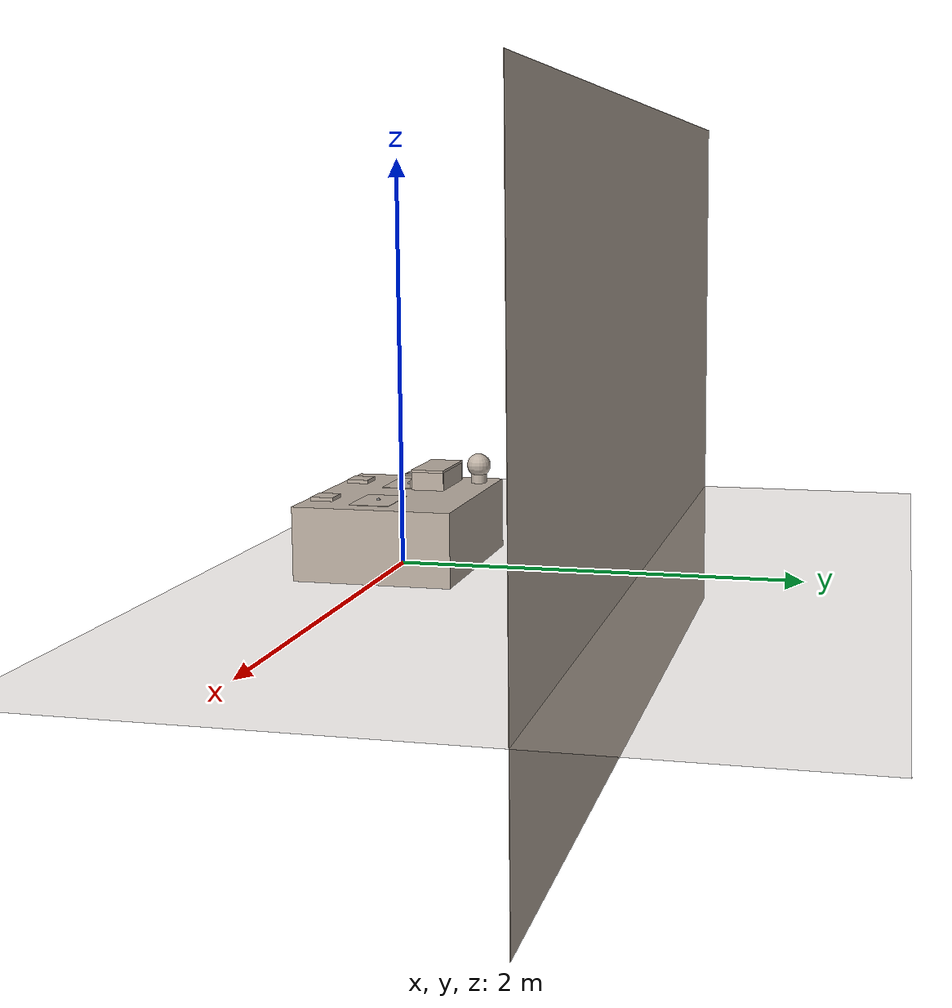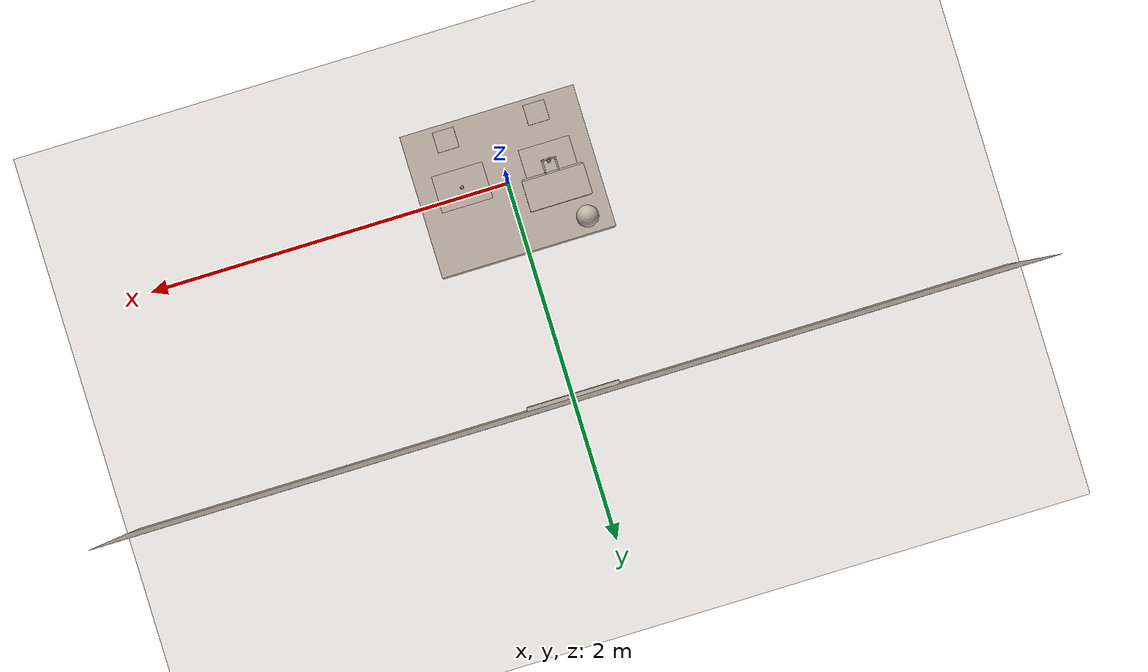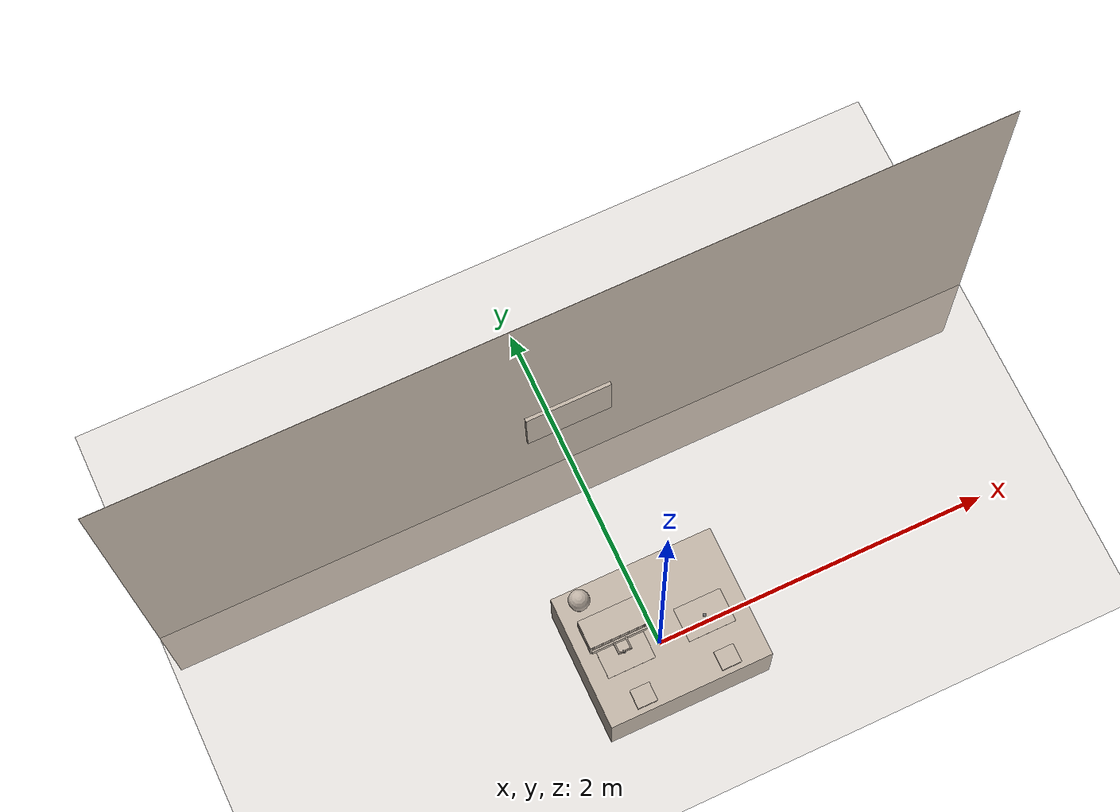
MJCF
<mujoco model="dinner_table">
  <compiler angle="radian" meshdir="../assets/meshes" texturedir="../assets/textures"/>
  <option timestep="0.002" integrator="implicitfast" iterations="50"/>

  <default>
    <geom solref="0.005 1" solimp="0.95 0.99 0.001"/>
    <default class="furniture">
      <geom friction="0.8 0.005 0.0001" rgba="0.75 0.7 0.65 1"/>
    </default>
    <!-- SO-101 arm default classes (so101/sts3215/...) are merged at build time -->
  </default>

  <asset>
    <!-- Textures and materials -->
    <texture name="table_tex" type="2d" file="table/table_01.png"/>
    <material name="table_mat" texture="table_tex" specular="0.2" shininess="0.1"/>

    <texture name="floor_tex" type="2d" file="floor/floor_01.png"/>
    <material name="floor_mat" texture="floor_tex" specular="0.1" shininess="0.1"/>

    <texture name="wall_tex" type="2d" file="wall/wall_01.png"/>
    <material name="wall_mat" texture="wall_tex" specular="0.05" shininess="0.05"/>

    <texture name="placemat_tex" type="2d" file="placemat/placemat_01.png"/>
    <material name="placemat_mat" texture="placemat_tex" specular="0.1" shininess="0.1"/>
    <!-- SO-101 arm meshes are merged at build time from assets/meshes/so101/official -->
  </asset>

  <worldbody>
    <include file="parts/lights.xml"/>
    <include file="parts/table.xml"/>
    <include file="parts/drawer_cabinet.xml"/>
    <include file="parts/placemats.xml"/>
    <include file="parts/decor.xml"/>
  </worldbody>
</mujoco>

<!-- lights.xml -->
<mujocoinclude>
  <!-- 4-light studio illumination rig -->
  <light name="key_light" pos="0.8 0.8 1.5" dir="-0.5 -0.5 -1.0" diffuse="0.5 0.5 0.5" specular="0.2 0.2 0.2"/>
  <light name="fill_light" pos="-0.8 0.6 1.2" dir="0.5 -0.4 -1.0" diffuse="0.35 0.35 0.35" specular="0.1 0.1 0.1"/>
  <light name="back_light" pos="0 1.2 0.8" dir="0 -0.8 -0.5" diffuse="0.25 0.25 0.25" specular="0.1 0.1 0.1"/>
  <light name="ambient" pos="0 0 2.0" dir="0 0 -1" diffuse="0.15 0.15 0.15" ambient="0.1 0.1 0.1"/>
</mujocoinclude>

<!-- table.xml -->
<mujocoinclude>
  <!-- Tabletop, legs, and arm mounting platforms -->
  <body name="table" pos="0 0 0">
    <geom name="table_top_col" type="box" size="0.48 0.39 0.18" pos="0 0 0.18" class="furniture"/>
    <geom name="table_leg_1" type="box" size="0.02 0.02 0.17" pos="0.44 0.35 0.17" class="furniture"/>
    <geom name="table_leg_2" type="box" size="0.02 0.02 0.17" pos="-0.44 0.35 0.17" class="furniture"/>
    <geom name="table_leg_3" type="box" size="0.02 0.02 0.17" pos="0.44 -0.35 0.17" class="furniture"/>
    <geom name="table_leg_4" type="box" size="0.02 0.02 0.17" pos="-0.44 -0.35 0.17" class="furniture"/>

    <!-- Arm mounting pads under ARM_MOUNTS["A"]=(-0.25, -0.305, 0.378) and ARM_MOUNTS["B"]=(0.25, -0.305, 0.378) -->
    <geom name="arm_mount_A_geom" type="box" size="0.058 0.055 0.009" pos="-0.25 -0.305 0.369" class="furniture"/>
    <geom name="arm_mount_B_geom" type="box" size="0.058 0.055 0.009" pos="0.25 -0.305 0.369" class="furniture"/>
  </body>
</mujocoinclude>

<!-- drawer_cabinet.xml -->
<mujocoinclude>
  <body name="cabinet" pos="-0.24 0.11 0.36">
    <geom name="cabinet_side_l" type="box" size="0.006 0.083 0.045" pos="-0.164 0 0.045" class="furniture"/>
    <geom name="cabinet_side_r" type="box" size="0.006 0.083 0.045" pos="0.164 0 0.045" class="furniture"/>
    <geom name="cabinet_roof" type="box" size="0.170 0.083 0.006" pos="0 0 0.096" class="furniture"/>
    <geom name="cabinet_back" type="box" size="0.158 0.005 0.045" pos="0 0.078 0.045" class="furniture"/>
    <body name="drawer_top" pos="0 0 0">
      <!-- Prismatic drawer: slides toward the arms along -Y; frictionloss and damping are DR axes -->
      <joint name="drawer_slide" type="slide" axis="0 -1 0" range="0 0.12"
             damping="2" frictionloss="0.15" armature="0.01" actuatorfrcrange="-25 25"/>
      <inertial pos="0 0 0.025" mass="0.18" diaginertia="0.00045 0.0006 0.0009"/>
      <geom name="drawer_floor" type="box" size="0.150 0.072 0.004" pos="0 0 0.015" class="furniture"/>
      <geom name="cutlery_support_south" type="box" size="0.140 0.003 0.005" pos="0 -0.047 0.024" class="furniture"/>
      <geom name="cutlery_support_north" type="box" size="0.140 0.003 0.005" pos="0 0.006 0.024" class="furniture"/>
      <geom name="drawer_side_l" type="box" size="0.003 0.072 0.015" pos="-0.150 0 0.034" class="furniture"/>
      <geom name="drawer_side_r" type="box" size="0.003 0.072 0.015" pos="0.150 0 0.034" class="furniture"/>
      <geom name="drawer_back" type="box" size="0.150 0.003 0.015" pos="0 0.069 0.034" class="furniture"/>
      <geom name="drawer_front" type="box" size="0.164 0.005 0.020" pos="0 -0.089 0.030" class="furniture"/>
      <geom name="drawer_handle_post_l" type="box" size="0.004 0.034 0.004" pos="-0.036 -0.124 0.052" class="furniture"/>
      <geom name="drawer_handle_post_r" type="box" size="0.004 0.034 0.004" pos="0.036 -0.124 0.052" class="furniture"/>
      <geom name="drawer_handle_bar" type="capsule" size="0.005 0.036" pos="0 -0.160 0.052" euler="0 1.5707963 0" class="furniture"/>
      <site name="drawer_handle" pos="0 -0.160 0.052" size="0.005"/>
      <site name="tray_slot_fork" pos="-0.05 -0.02 0.03" size="0.005"/>
      <site name="tray_slot_spoon" pos="0.05 -0.02 0.03" size="0.005"/>
    </body>
  </body>
</mujocoinclude>

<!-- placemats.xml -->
<mujocoinclude>
  <!-- Placemats on the dining table -->
  <body name="placemat_1_body" pos="0.24 -0.04 0.361">
    <geom name="placemat_1_geom" type="box" size="0.14 0.10 0.001" class="furniture" contype="0" conaffinity="0"/>
    <site name="placemat_1" pos="0 0 0.001" size="0.01"/>
  </body>
  <body name="placemat_2_body" pos="-0.24 -0.04 0.361">
    <geom name="placemat_2_geom" type="box" size="0.14 0.10 0.001" class="furniture" contype="0" conaffinity="0"/>
    <site name="placemat_2" pos="0 0 0.001" size="0.01"/>
  </body>
</mujocoinclude>

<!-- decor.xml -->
<mujocoinclude>
  <!-- Room floor -->
  <geom name="floor" type="plane" size="2.5 2.5 0.1" pos="0 0 0" class="furniture" material="floor_mat"/>

  <!-- Back wall -->
  <geom name="wall" type="plane" size="2.5 1.5 0.1" pos="0 1.2 0.75" quat="0.7071068 0.7071068 0 0" class="furniture" material="wall_mat"/>

  <!-- Potted plant on table corner (-0.35, 0.30, table) -->
  <body name="plant" pos="-0.35 0.30 0.36">
    <geom name="plant_pot" type="cylinder" size="0.04 0.03" pos="0 0 0.03" class="furniture"/>
    <geom name="plant_foliage" type="sphere" size="0.06" pos="0 0 0.09" class="furniture"/>
  </body>

  <!-- Wall picture frame behind cabinet -->
  <body name="wall_picture" pos="0 1.18 0.80" quat="0.7071068 0.7071068 0 0">
    <geom name="picture_frame_geom" type="box" size="0.25 0.18 0.01" class="furniture"/>
  </body>
</mujocoinclude>
